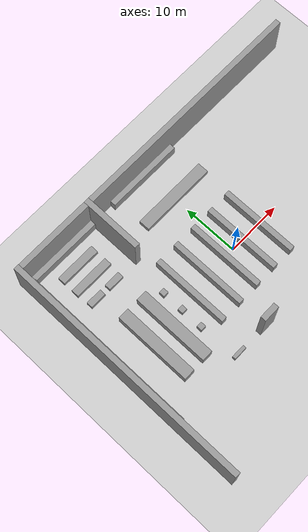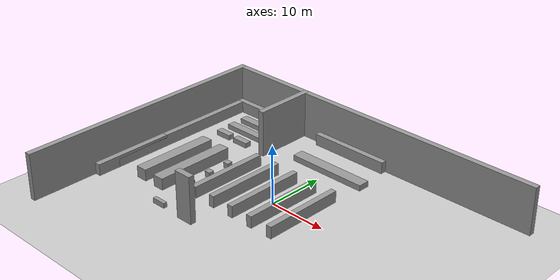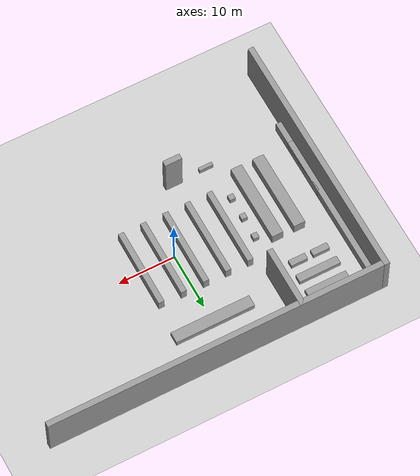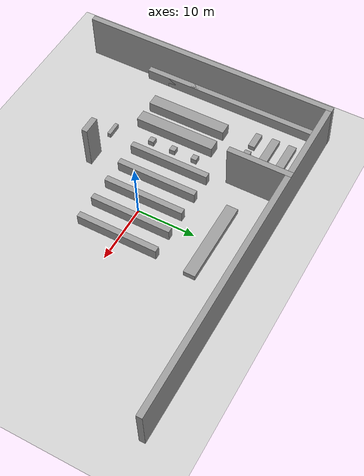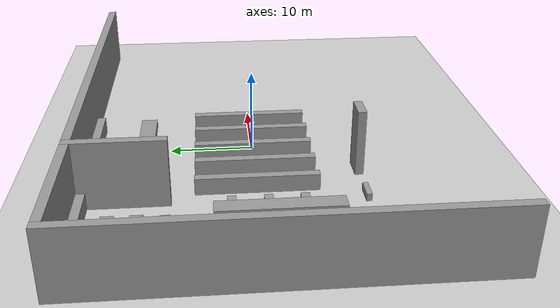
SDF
<sdf version="1.6">
 <world name="default">
  <model name="ground_plane">
   <static>1</static>
   <link name="link">
    <collision name="collision">
     <geometry><plane><normal>0 0 1</normal><size>100 100</size></plane></geometry>
     <surface>
      <contact><collide_bitmask>65535</collide_bitmask></contact>
      <friction><ode><mu>100</mu><mu2>50</mu2></ode></friction>
     </surface>
    </collision>
    <visual name="visual">
     <cast_shadows>0</cast_shadows>
     <geometry><plane><normal>0 0 1</normal><size>100 100</size></plane></geometry>
     <material>
      <script><uri>file://media/materials/scripts/gazebo.material</uri><name>Gazebo/Grey</name></script>
     </material>
    </visual>
   </link>
  </model>
  <model name="shelf">
   <link name="link">
    <inertial>
     <mass>1</mass>
     <inertia>
      <ixx>0.166667</ixx>
      <ixy>0</ixy>
      <ixz>0</ixz>
      <iyy>0.166667</iyy>
      <iyz>0</iyz>
      <izz>0.166667</izz>
     </inertia>
    </inertial>
    <visual name="visual">
     <geometry><box><size>1 14 2</size></box></geometry>
     <material>
      <script><name>Gazebo/Grey</name><uri>file://media/materials/scripts/gazebo.material</uri></script>
     </material>
    </visual>
    <collision name="collision">
     <geometry><box><size>1 14 2</size></box></geometry>
     <surface>
      <friction>
       <ode><mu>1</mu><mu2>1</mu2><fdir1>0 0 0</fdir1><slip1>0</slip1><slip2>0</slip2></ode>
       <torsional>
        <coefficient>1</coefficient>
        <patch_radius>0</patch_radius>
        <surface_radius>0</surface_radius>
        <use_patch_radius>1</use_patch_radius>
        <ode><slip>0</slip></ode>
       </torsional>
      </friction>
      <bounce><restitution_coefficient>0</restitution_coefficient><threshold>1e+06</threshold></bounce>
      <contact>
       <collide_without_contact>0</collide_without_contact>
       <collide_without_contact_bitmask>1</collide_without_contact_bitmask>
       <collide_bitmask>1</collide_bitmask>
       <ode>
        <soft_cfm>0</soft_cfm>
        <soft_erp>0.2</soft_erp>
        <kp>1e+13</kp>
        <kd>1</kd>
        <max_vel>0.01</max_vel>
        <min_depth>0</min_depth>
       </ode>
       <bullet>
        <split_impulse>1</split_impulse>
        <split_impulse_penetration_threshold>-0.01</split_impulse_penetration_threshold>
        <soft_cfm>0</soft_cfm>
        <soft_erp>0.2</soft_erp>
        <kp>1e+13</kp>
        <kd>1</kd>
       </bullet>
      </contact>
     </surface>
    </collision>
   </link>
   <static>1</static>
   <pose>-10 0 1 0 -0 0</pose>
  </model>
  <model name="shelf_0">
   <link name="link">
    <inertial>
     <mass>1</mass>
     <inertia>
      <ixx>0.166667</ixx>
      <ixy>0</ixy>
      <ixz>0</ixz>
      <iyy>0.166667</iyy>
      <iyz>0</iyz>
      <izz>0.166667</izz>
     </inertia>
    </inertial>
    <visual name="visual">
     <geometry><box><size>1 14 2</size></box></geometry>
     <material>
      <script><name>Gazebo/Grey</name><uri>file://media/materials/scripts/gazebo.material</uri></script>
     </material>
    </visual>
    <collision name="collision">
     <geometry><box><size>1 14 2</size></box></geometry>
     <surface>
      <friction>
       <ode><mu>1</mu><mu2>1</mu2><fdir1>0 0 0</fdir1><slip1>0</slip1><slip2>0</slip2></ode>
       <torsional>
        <coefficient>1</coefficient>
        <patch_radius>0</patch_radius>
        <surface_radius>0</surface_radius>
        <use_patch_radius>1</use_patch_radius>
        <ode><slip>0</slip></ode>
       </torsional>
      </friction>
      <bounce><restitution_coefficient>0</restitution_coefficient><threshold>1e+06</threshold></bounce>
      <contact>
       <collide_without_contact>0</collide_without_contact>
       <collide_without_contact_bitmask>1</collide_without_contact_bitmask>
       <collide_bitmask>1</collide_bitmask>
       <ode>
        <soft_cfm>0</soft_cfm>
        <soft_erp>0.2</soft_erp>
        <kp>1e+13</kp>
        <kd>1</kd>
        <max_vel>0.01</max_vel>
        <min_depth>0</min_depth>
       </ode>
       <bullet>
        <split_impulse>1</split_impulse>
        <split_impulse_penetration_threshold>-0.01</split_impulse_penetration_threshold>
        <soft_cfm>0</soft_cfm>
        <soft_erp>0.2</soft_erp>
        <kp>1e+13</kp>
        <kd>1</kd>
       </bullet>
      </contact>
     </surface>
    </collision>
   </link>
   <static>1</static>
   <pose>-6 0 1 0 -0 0</pose>
  </model>
  <model name="shelf_1">
   <link name="link">
    <inertial>
     <mass>1</mass>
     <inertia>
      <ixx>0.166667</ixx>
      <ixy>0</ixy>
      <ixz>0</ixz>
      <iyy>0.166667</iyy>
      <iyz>0</iyz>
      <izz>0.166667</izz>
     </inertia>
    </inertial>
    <visual name="visual">
     <geometry><box><size>1 14 2</size></box></geometry>
     <material>
      <script><name>Gazebo/Grey</name><uri>file://media/materials/scripts/gazebo.material</uri></script>
     </material>
    </visual>
    <collision name="collision">
     <geometry><box><size>1 14 2</size></box></geometry>
     <surface>
      <friction>
       <ode><mu>1</mu><mu2>1</mu2><fdir1>0 0 0</fdir1><slip1>0</slip1><slip2>0</slip2></ode>
       <torsional>
        <coefficient>1</coefficient>
        <patch_radius>0</patch_radius>
        <surface_radius>0</surface_radius>
        <use_patch_radius>1</use_patch_radius>
        <ode><slip>0</slip></ode>
       </torsional>
      </friction>
      <bounce><restitution_coefficient>0</restitution_coefficient><threshold>1e+06</threshold></bounce>
      <contact>
       <collide_without_contact>0</collide_without_contact>
       <collide_without_contact_bitmask>1</collide_without_contact_bitmask>
       <collide_bitmask>1</collide_bitmask>
       <ode>
        <soft_cfm>0</soft_cfm>
        <soft_erp>0.2</soft_erp>
        <kp>1e+13</kp>
        <kd>1</kd>
        <max_vel>0.01</max_vel>
        <min_depth>0</min_depth>
       </ode>
       <bullet>
        <split_impulse>1</split_impulse>
        <split_impulse_penetration_threshold>-0.01</split_impulse_penetration_threshold>
        <soft_cfm>0</soft_cfm>
        <soft_erp>0.2</soft_erp>
        <kp>1e+13</kp>
        <kd>1</kd>
       </bullet>
      </contact>
     </surface>
    </collision>
   </link>
   <static>1</static>
   <pose>-2 0 1 0 -0 0</pose>
  </model>
  <model name="shelf_2">
   <link name="link">
    <inertial>
     <mass>1</mass>
     <inertia>
      <ixx>0.166667</ixx>
      <ixy>0</ixy>
      <ixz>0</ixz>
      <iyy>0.166667</iyy>
      <iyz>0</iyz>
      <izz>0.166667</izz>
     </inertia>
    </inertial>
    <visual name="visual">
     <geometry><box><size>1 14 2</size></box></geometry>
     <material>
      <script><name>Gazebo/Grey</name><uri>file://media/materials/scripts/gazebo.material</uri></script>
     </material>
    </visual>
    <collision name="collision">
     <geometry><box><size>1 14 2</size></box></geometry>
     <surface>
      <friction>
       <ode><mu>1</mu><mu2>1</mu2><fdir1>0 0 0</fdir1><slip1>0</slip1><slip2>0</slip2></ode>
       <torsional>
        <coefficient>1</coefficient>
        <patch_radius>0</patch_radius>
        <surface_radius>0</surface_radius>
        <use_patch_radius>1</use_patch_radius>
        <ode><slip>0</slip></ode>
       </torsional>
      </friction>
      <bounce><restitution_coefficient>0</restitution_coefficient><threshold>1e+06</threshold></bounce>
      <contact>
       <collide_without_contact>0</collide_without_contact>
       <collide_without_contact_bitmask>1</collide_without_contact_bitmask>
       <collide_bitmask>1</collide_bitmask>
       <ode>
        <soft_cfm>0</soft_cfm>
        <soft_erp>0.2</soft_erp>
        <kp>1e+13</kp>
        <kd>1</kd>
        <max_vel>0.01</max_vel>
        <min_depth>0</min_depth>
       </ode>
       <bullet>
        <split_impulse>1</split_impulse>
        <split_impulse_penetration_threshold>-0.01</split_impulse_penetration_threshold>
        <soft_cfm>0</soft_cfm>
        <soft_erp>0.2</soft_erp>
        <kp>1e+13</kp>
        <kd>1</kd>
       </bullet>
      </contact>
     </surface>
    </collision>
   </link>
   <static>1</static>
   <pose>2 0 1 0 -0 0</pose>
  </model>
  <model name="shelf_3">
   <link name="link">
    <inertial>
     <mass>1</mass>
     <inertia>
      <ixx>0.166667</ixx>
      <ixy>0</ixy>
      <ixz>0</ixz>
      <iyy>0.166667</iyy>
      <iyz>0</iyz>
      <izz>0.166667</izz>
     </inertia>
    </inertial>
    <visual name="visual">
     <geometry><box><size>1 14 2</size></box></geometry>
     <material>
      <script><name>Gazebo/Grey</name><uri>file://media/materials/scripts/gazebo.material</uri></script>
     </material>
    </visual>
    <collision name="collision">
     <geometry><box><size>1 14 2</size></box></geometry>
     <surface>
      <friction>
       <ode><mu>1</mu><mu2>1</mu2><fdir1>0 0 0</fdir1><slip1>0</slip1><slip2>0</slip2></ode>
       <torsional>
        <coefficient>1</coefficient>
        <patch_radius>0</patch_radius>
        <surface_radius>0</surface_radius>
        <use_patch_radius>1</use_patch_radius>
        <ode><slip>0</slip></ode>
       </torsional>
      </friction>
      <bounce><restitution_coefficient>0</restitution_coefficient><threshold>1e+06</threshold></bounce>
      <contact>
       <collide_without_contact>0</collide_without_contact>
       <collide_without_contact_bitmask>1</collide_without_contact_bitmask>
       <collide_bitmask>1</collide_bitmask>
       <ode>
        <soft_cfm>0</soft_cfm>
        <soft_erp>0.2</soft_erp>
        <kp>1e+13</kp>
        <kd>1</kd>
        <max_vel>0.01</max_vel>
        <min_depth>0</min_depth>
       </ode>
       <bullet>
        <split_impulse>1</split_impulse>
        <split_impulse_penetration_threshold>-0.01</split_impulse_penetration_threshold>
        <soft_cfm>0</soft_cfm>
        <soft_erp>0.2</soft_erp>
        <kp>1e+13</kp>
        <kd>1</kd>
       </bullet>
      </contact>
     </surface>
    </collision>
   </link>
   <static>1</static>
   <pose>6 0 1 0 -0 0</pose>
  </model>
  <model name="shelf_clone_0_clone">
   <link name="link">
    <inertial>
     <mass>1</mass>
     <inertia>
      <ixx>0.166667</ixx>
      <ixy>0</ixy>
      <ixz>0</ixz>
      <iyy>0.166667</iyy>
      <iyz>0</iyz>
      <izz>0.166667</izz>
     </inertia>
    </inertial>
    <visual name="visual">
     <geometry><box><size>2 14 2</size></box></geometry>
     <material>
      <script><name>Gazebo/Grey</name><uri>file://media/materials/scripts/gazebo.material</uri></script>
     </material>
    </visual>
    <collision name="collision">
     <geometry><box><size>2 14 2</size></box></geometry>
     <surface>
      <friction>
       <ode><mu>1</mu><mu2>1</mu2><fdir1>0 0 0</fdir1><slip1>0</slip1><slip2>0</slip2></ode>
       <torsional>
        <coefficient>1</coefficient>
        <patch_radius>0</patch_radius>
        <surface_radius>0</surface_radius>
        <use_patch_radius>1</use_patch_radius>
        <ode><slip>0</slip></ode>
       </torsional>
      </friction>
      <bounce><restitution_coefficient>0</restitution_coefficient><threshold>1e+06</threshold></bounce>
      <contact>
       <collide_without_contact>0</collide_without_contact>
       <collide_without_contact_bitmask>1</collide_without_contact_bitmask>
       <collide_bitmask>1</collide_bitmask>
       <ode>
        <soft_cfm>0</soft_cfm>
        <soft_erp>0.2</soft_erp>
        <kp>1e+13</kp>
        <kd>1</kd>
        <max_vel>0.01</max_vel>
        <min_depth>0</min_depth>
       </ode>
       <bullet>
        <split_impulse>1</split_impulse>
        <split_impulse_penetration_threshold>-0.01</split_impulse_penetration_threshold>
        <soft_cfm>0</soft_cfm>
        <soft_erp>0.2</soft_erp>
        <kp>1e+13</kp>
        <kd>1</kd>
       </bullet>
      </contact>
     </surface>
    </collision>
   </link>
   <static>1</static>
   <pose>-20 -2 1 0 -0 0</pose>
  </model>
  <model name="shelf_clone_clone_clone_2_clone">
   <link name="link">
    <inertial>
     <mass>1</mass>
     <inertia>
      <ixx>0.166667</ixx>
      <ixy>0</ixy>
      <ixz>0</ixz>
      <iyy>0.166667</iyy>
      <iyz>0</iyz>
      <izz>0.166667</izz>
     </inertia>
    </inertial>
    <visual name="visual">
     <geometry><box><size>1.41321 7.39896 0.879745</size></box></geometry>
     <material>
      <script><name>Gazebo/Grey</name><uri>file://media/materials/scripts/gazebo.material</uri></script>
     </material>
    </visual>
    <collision name="collision">
     <geometry><box><size>1.41321 7.39896 0.879745</size></box></geometry>
     <surface>
      <friction>
       <ode><mu>1</mu><mu2>1</mu2><fdir1>0 0 0</fdir1><slip1>0</slip1><slip2>0</slip2></ode>
       <torsional>
        <coefficient>1</coefficient>
        <patch_radius>0</patch_radius>
        <surface_radius>0</surface_radius>
        <use_patch_radius>1</use_patch_radius>
        <ode><slip>0</slip></ode>
       </torsional>
      </friction>
      <bounce><restitution_coefficient>0</restitution_coefficient><threshold>1e+06</threshold></bounce>
      <contact>
       <collide_without_contact>0</collide_without_contact>
       <collide_without_contact_bitmask>1</collide_without_contact_bitmask>
       <collide_bitmask>1</collide_bitmask>
       <ode>
        <soft_cfm>0</soft_cfm>
        <soft_erp>0.2</soft_erp>
        <kp>1e+13</kp>
        <kd>1</kd>
        <max_vel>0.01</max_vel>
        <min_depth>0</min_depth>
       </ode>
       <bullet>
        <split_impulse>1</split_impulse>
        <split_impulse_penetration_threshold>-0.01</split_impulse_penetration_threshold>
        <soft_cfm>0</soft_cfm>
        <soft_erp>0.2</soft_erp>
        <kp>1e+13</kp>
        <kd>1</kd>
       </bullet>
      </contact>
     </surface>
    </collision>
   </link>
   <static>1</static>
   <pose>-19 16 0.440412 0 0 -1.5708</pose>
  </model>
  <model name="shelf_clone_clone_clone_2_clone_0_clone">
   <link name="link">
    <inertial>
     <mass>1</mass>
     <inertia>
      <ixx>0.166667</ixx>
      <ixy>0</ixy>
      <ixz>0</ixz>
      <iyy>0.166667</iyy>
      <iyz>0</iyz>
      <izz>0.166667</izz>
     </inertia>
    </inertial>
    <visual name="visual">
     <geometry><box><size>1.12602 2.96029 0.879745</size></box></geometry>
     <material>
      <script><name>Gazebo/Grey</name><uri>file://media/materials/scripts/gazebo.material</uri></script>
     </material>
    </visual>
    <collision name="collision">
     <geometry><box><size>1.12602 2.96029 0.879745</size></box></geometry>
     <surface>
      <friction>
       <ode><mu>1</mu><mu2>1</mu2><fdir1>0 0 0</fdir1><slip1>0</slip1><slip2>0</slip2></ode>
       <torsional>
        <coefficient>1</coefficient>
        <patch_radius>0</patch_radius>
        <surface_radius>0</surface_radius>
        <use_patch_radius>1</use_patch_radius>
        <ode><slip>0</slip></ode>
       </torsional>
      </friction>
      <bounce><restitution_coefficient>0</restitution_coefficient><threshold>1e+06</threshold></bounce>
      <contact>
       <collide_without_contact>0</collide_without_contact>
       <collide_without_contact_bitmask>1</collide_without_contact_bitmask>
       <collide_bitmask>1</collide_bitmask>
       <ode>
        <soft_cfm>0</soft_cfm>
        <soft_erp>0.2</soft_erp>
        <kp>1e+13</kp>
        <kd>1</kd>
        <max_vel>0.01</max_vel>
        <min_depth>0</min_depth>
       </ode>
       <bullet>
        <split_impulse>1</split_impulse>
        <split_impulse_penetration_threshold>-0.01</split_impulse_penetration_threshold>
        <soft_cfm>0</soft_cfm>
        <soft_erp>0.2</soft_erp>
        <kp>1e+13</kp>
        <kd>1</kd>
       </bullet>
      </contact>
     </surface>
    </collision>
   </link>
   <static>1</static>
   <pose>-17 10 0.440412 0 0 -1.5708</pose>
  </model>
  <model name="shelf_clone_clone_clone_clone_0_clone_clone_clone_clone">
   <link name="link">
    <inertial>
     <mass>1</mass>
     <inertia>
      <ixx>0.166667</ixx>
      <ixy>0</ixy>
      <ixz>0</ixz>
      <iyy>0.166667</iyy>
      <iyz>0</iyz>
      <izz>0.166667</izz>
     </inertia>
    </inertial>
    <visual name="visual">
     <geometry><box><size>0.6246 2.46632 0.879745</size></box></geometry>
     <material>
      <script><name>Gazebo/Grey</name><uri>file://media/materials/scripts/gazebo.material</uri></script>
     </material>
    </visual>
    <collision name="collision">
     <geometry><box><size>0.6246 2.46632 0.879745</size></box></geometry>
     <surface>
      <friction>
       <ode><mu>1</mu><mu2>1</mu2><fdir1>0 0 0</fdir1><slip1>0</slip1><slip2>0</slip2></ode>
       <torsional>
        <coefficient>1</coefficient>
        <patch_radius>0</patch_radius>
        <surface_radius>0</surface_radius>
        <use_patch_radius>1</use_patch_radius>
        <ode><slip>0</slip></ode>
       </torsional>
      </friction>
      <bounce><restitution_coefficient>0</restitution_coefficient><threshold>1e+06</threshold></bounce>
      <contact>
       <collide_without_contact>0</collide_without_contact>
       <collide_without_contact_bitmask>1</collide_without_contact_bitmask>
       <collide_bitmask>1</collide_bitmask>
       <ode>
        <soft_cfm>0</soft_cfm>
        <soft_erp>0.2</soft_erp>
        <kp>1e+13</kp>
        <kd>1</kd>
        <max_vel>0.01</max_vel>
        <min_depth>0</min_depth>
       </ode>
       <bullet>
        <split_impulse>1</split_impulse>
        <split_impulse_penetration_threshold>-0.01</split_impulse_penetration_threshold>
        <soft_cfm>0</soft_cfm>
        <soft_erp>0.2</soft_erp>
        <kp>1e+13</kp>
        <kd>1</kd>
       </bullet>
      </contact>
     </surface>
    </collision>
   </link>
   <static>1</static>
   <pose>-12 -12 0.440412 0 0 -1.5708</pose>
  </model>
  <model name="shelf_clone_clone_clone_2_clone_clone">
   <link name="link">
    <inertial>
     <mass>1</mass>
     <inertia>
      <ixx>0.166667</ixx>
      <ixy>0</ixy>
      <ixz>0</ixz>
      <iyy>0.166667</iyy>
      <iyz>0</iyz>
      <izz>0.166667</izz>
     </inertia>
    </inertial>
    <visual name="visual">
     <geometry><box><size>1.41321 7.39896 0.879745</size></box></geometry>
     <material>
      <script><name>Gazebo/Grey</name><uri>file://media/materials/scripts/gazebo.material</uri></script>
     </material>
    </visual>
    <collision name="collision">
     <geometry><box><size>1.41321 7.39896 0.879745</size></box></geometry>
     <surface>
      <friction>
       <ode><mu>1</mu><mu2>1</mu2><fdir1>0 0 0</fdir1><slip1>0</slip1><slip2>0</slip2></ode>
       <torsional>
        <coefficient>1</coefficient>
        <patch_radius>0</patch_radius>
        <surface_radius>0</surface_radius>
        <use_patch_radius>1</use_patch_radius>
        <ode><slip>0</slip></ode>
       </torsional>
      </friction>
      <bounce><restitution_coefficient>0</restitution_coefficient><threshold>1e+06</threshold></bounce>
      <contact>
       <collide_without_contact>0</collide_without_contact>
       <collide_without_contact_bitmask>1</collide_without_contact_bitmask>
       <collide_bitmask>1</collide_bitmask>
       <ode>
        <soft_cfm>0</soft_cfm>
        <soft_erp>0.2</soft_erp>
        <kp>1e+13</kp>
        <kd>1</kd>
        <max_vel>0.01</max_vel>
        <min_depth>0</min_depth>
       </ode>
       <bullet>
        <split_impulse>1</split_impulse>
        <split_impulse_penetration_threshold>-0.01</split_impulse_penetration_threshold>
        <soft_cfm>0</soft_cfm>
        <soft_erp>0.2</soft_erp>
        <kp>1e+13</kp>
        <kd>1</kd>
       </bullet>
      </contact>
     </surface>
    </collision>
   </link>
   <static>1</static>
   <pose>-19 13 0.440412 0 0 -1.5708</pose>
  </model>
  <model name="shelf_clone_clone_clone_2_clone_0_clone_clone">
   <link name="link">
    <inertial>
     <mass>1</mass>
     <inertia>
      <ixx>0.166667</ixx>
      <ixy>0</ixy>
      <ixz>0</ixz>
      <iyy>0.166667</iyy>
      <iyz>0</iyz>
      <izz>0.166667</izz>
     </inertia>
    </inertial>
    <visual name="visual">
     <geometry><box><size>1.12602 2.96029 0.879745</size></box></geometry>
     <material>
      <script><name>Gazebo/Grey</name><uri>file://media/materials/scripts/gazebo.material</uri></script>
     </material>
    </visual>
    <collision name="collision">
     <geometry><box><size>1.12602 2.96029 0.879745</size></box></geometry>
     <surface>
      <friction>
       <ode><mu>1</mu><mu2>1</mu2><fdir1>0 0 0</fdir1><slip1>0</slip1><slip2>0</slip2></ode>
       <torsional>
        <coefficient>1</coefficient>
        <patch_radius>0</patch_radius>
        <surface_radius>0</surface_radius>
        <use_patch_radius>1</use_patch_radius>
        <ode><slip>0</slip></ode>
       </torsional>
      </friction>
      <bounce><restitution_coefficient>0</restitution_coefficient><threshold>1e+06</threshold></bounce>
      <contact>
       <collide_without_contact>0</collide_without_contact>
       <collide_without_contact_bitmask>1</collide_without_contact_bitmask>
       <collide_bitmask>1</collide_bitmask>
       <ode>
        <soft_cfm>0</soft_cfm>
        <soft_erp>0.2</soft_erp>
        <kp>1e+13</kp>
        <kd>1</kd>
        <max_vel>0.01</max_vel>
        <min_depth>0</min_depth>
       </ode>
       <bullet>
        <split_impulse>1</split_impulse>
        <split_impulse_penetration_threshold>-0.01</split_impulse_penetration_threshold>
        <soft_cfm>0</soft_cfm>
        <soft_erp>0.2</soft_erp>
        <kp>1e+13</kp>
        <kd>1</kd>
       </bullet>
      </contact>
     </surface>
    </collision>
   </link>
   <static>1</static>
   <pose>-21 10 0.440412 0 0 -1.5708</pose>
  </model>
  <model name="shelf_clone_0_clone_clone">
   <link name="link">
    <inertial>
     <mass>1</mass>
     <inertia>
      <ixx>0.166667</ixx>
      <ixy>0</ixy>
      <ixz>0</ixz>
      <iyy>0.166667</iyy>
      <iyz>0</iyz>
      <izz>0.166667</izz>
     </inertia>
    </inertial>
    <visual name="visual">
     <geometry><box><size>2 14 2</size></box></geometry>
     <material>
      <script><name>Gazebo/Grey</name><uri>file://media/materials/scripts/gazebo.material</uri></script>
     </material>
    </visual>
    <collision name="collision">
     <geometry><box><size>2 14 2</size></box></geometry>
     <surface>
      <friction>
       <ode><mu>1</mu><mu2>1</mu2><fdir1>0 0 0</fdir1><slip1>0</slip1><slip2>0</slip2></ode>
       <torsional>
        <coefficient>1</coefficient>
        <patch_radius>0</patch_radius>
        <surface_radius>0</surface_radius>
        <use_patch_radius>1</use_patch_radius>
        <ode><slip>0</slip></ode>
       </torsional>
      </friction>
      <bounce><restitution_coefficient>0</restitution_coefficient><threshold>1e+06</threshold></bounce>
      <contact>
       <collide_without_contact>0</collide_without_contact>
       <collide_without_contact_bitmask>1</collide_without_contact_bitmask>
       <collide_bitmask>1</collide_bitmask>
       <ode>
        <soft_cfm>0</soft_cfm>
        <soft_erp>0.2</soft_erp>
        <kp>1e+13</kp>
        <kd>1</kd>
        <max_vel>0.01</max_vel>
        <min_depth>0</min_depth>
       </ode>
       <bullet>
        <split_impulse>1</split_impulse>
        <split_impulse_penetration_threshold>-0.01</split_impulse_penetration_threshold>
        <soft_cfm>0</soft_cfm>
        <soft_erp>0.2</soft_erp>
        <kp>1e+13</kp>
        <kd>1</kd>
       </bullet>
      </contact>
     </surface>
    </collision>
   </link>
   <static>1</static>
   <pose>-16 -2 1 0 -0 0</pose>
  </model>
  <model name="Cube_0">
   <link name="link_1">
    <inertial>
     <mass>1</mass>
     <inertia>
      <ixx>0.166667</ixx>
      <ixy>0</ixy>
      <ixz>0</ixz>
      <iyy>0.166667</iyy>
      <iyz>0</iyz>
      <izz>0.166667</izz>
     </inertia>
    </inertial>
    <visual name="visual">
     <geometry><box><size>1 1 1</size></box></geometry>
     <material>
      <lighting>1</lighting>
      <script><uri>file://media/materials/scripts/gazebo.material</uri><name>Gazebo/Grey</name></script>
     </material>
    </visual>
    <collision name="collision">
     <geometry><box><size>1 1 1</size></box></geometry>
     <surface>
      <friction>
       <ode><mu>1</mu><mu2>1</mu2><fdir1>0 0 0</fdir1><slip1>0</slip1><slip2>0</slip2></ode>
       <torsional>
        <coefficient>1</coefficient>
        <patch_radius>0</patch_radius>
        <surface_radius>0</surface_radius>
        <use_patch_radius>1</use_patch_radius>
        <ode><slip>0</slip></ode>
       </torsional>
      </friction>
      <bounce><restitution_coefficient>0</restitution_coefficient><threshold>1e+06</threshold></bounce>
      <contact>
       <collide_without_contact>0</collide_without_contact>
       <collide_without_contact_bitmask>1</collide_without_contact_bitmask>
       <collide_bitmask>1</collide_bitmask>
       <ode>
        <soft_cfm>0</soft_cfm>
        <soft_erp>0.2</soft_erp>
        <kp>1e+13</kp>
        <kd>1</kd>
        <max_vel>0.01</max_vel>
        <min_depth>0</min_depth>
       </ode>
       <bullet>
        <split_impulse>1</split_impulse>
        <split_impulse_penetration_threshold>-0.01</split_impulse_penetration_threshold>
        <soft_cfm>0</soft_cfm>
        <soft_erp>0.2</soft_erp>
        <kp>1e+13</kp>
        <kd>1</kd>
       </bullet>
      </contact>
     </surface>
    </collision>
   </link>
   <static>1</static>
   <pose>-13 -5 0.5 0 -0 0</pose>
  </model>
  <model name="Cube">
   <link name="link_1">
    <inertial>
     <mass>1</mass>
     <inertia>
      <ixx>0.166667</ixx>
      <ixy>0</ixy>
      <ixz>0</ixz>
      <iyy>0.166667</iyy>
      <iyz>0</iyz>
      <izz>0.166667</izz>
     </inertia>
    </inertial>
    <visual name="visual">
     <geometry><box><size>1 1 1</size></box></geometry>
     <material>
      <lighting>1</lighting>
      <script><uri>file://media/materials/scripts/gazebo.material</uri><name>Gazebo/Grey</name></script>
     </material>
    </visual>
    <collision name="collision">
     <geometry><box><size>1 1 1</size></box></geometry>
     <surface>
      <friction>
       <ode><mu>1</mu><mu2>1</mu2><fdir1>0 0 0</fdir1><slip1>0</slip1><slip2>0</slip2></ode>
       <torsional>
        <coefficient>1</coefficient>
        <patch_radius>0</patch_radius>
        <surface_radius>0</surface_radius>
        <use_patch_radius>1</use_patch_radius>
        <ode><slip>0</slip></ode>
       </torsional>
      </friction>
      <bounce><restitution_coefficient>0</restitution_coefficient><threshold>1e+06</threshold></bounce>
      <contact>
       <collide_without_contact>0</collide_without_contact>
       <collide_without_contact_bitmask>1</collide_without_contact_bitmask>
       <collide_bitmask>1</collide_bitmask>
       <ode>
        <soft_cfm>0</soft_cfm>
        <soft_erp>0.2</soft_erp>
        <kp>1e+13</kp>
        <kd>1</kd>
        <max_vel>0.01</max_vel>
        <min_depth>0</min_depth>
       </ode>
       <bullet>
        <split_impulse>1</split_impulse>
        <split_impulse_penetration_threshold>-0.01</split_impulse_penetration_threshold>
        <soft_cfm>0</soft_cfm>
        <soft_erp>0.2</soft_erp>
        <kp>1e+13</kp>
        <kd>1</kd>
       </bullet>
      </contact>
     </surface>
    </collision>
   </link>
   <static>1</static>
   <pose>-13 -1 0.493982 0 -0 0</pose>
  </model>
  <model name="Cube_1">
   <link name="link_1">
    <inertial>
     <mass>1</mass>
     <inertia>
      <ixx>0.166667</ixx>
      <ixy>0</ixy>
      <ixz>0</ixz>
      <iyy>0.166667</iyy>
      <iyz>0</iyz>
      <izz>0.166667</izz>
     </inertia>
    </inertial>
    <visual name="visual">
     <geometry><box><size>1 1 1</size></box></geometry>
     <material>
      <lighting>1</lighting>
      <script><uri>file://media/materials/scripts/gazebo.material</uri><name>Gazebo/Grey</name></script>
     </material>
    </visual>
    <collision name="collision">
     <geometry><box><size>1 1 1</size></box></geometry>
     <surface>
      <friction>
       <ode><mu>1</mu><mu2>1</mu2><fdir1>0 0 0</fdir1><slip1>0</slip1><slip2>0</slip2></ode>
       <torsional>
        <coefficient>1</coefficient>
        <patch_radius>0</patch_radius>
        <surface_radius>0</surface_radius>
        <use_patch_radius>1</use_patch_radius>
        <ode><slip>0</slip></ode>
       </torsional>
      </friction>
      <bounce><restitution_coefficient>0</restitution_coefficient><threshold>1e+06</threshold></bounce>
      <contact>
       <collide_without_contact>0</collide_without_contact>
       <collide_without_contact_bitmask>1</collide_without_contact_bitmask>
       <collide_bitmask>1</collide_bitmask>
       <ode>
        <soft_cfm>0</soft_cfm>
        <soft_erp>0.2</soft_erp>
        <kp>1e+13</kp>
        <kd>1</kd>
        <max_vel>0.01</max_vel>
        <min_depth>0</min_depth>
       </ode>
       <bullet>
        <split_impulse>1</split_impulse>
        <split_impulse_penetration_threshold>-0.01</split_impulse_penetration_threshold>
        <soft_cfm>0</soft_cfm>
        <soft_erp>0.2</soft_erp>
        <kp>1e+13</kp>
        <kd>1</kd>
       </bullet>
      </contact>
     </surface>
    </collision>
   </link>
   <static>1</static>
   <pose>-13 3 0.495173 0 -0 0</pose>
  </model>
  <model name="wall2">
   <link name="link_0">
    <inertial>
     <mass>92.0004</mass>
     <inertia><ixx>4178.36</ixx><ixy>0</ixy><ixz>0</ixz><iyy>130.334</iyy><iyz>0</iyz><izz>4063.36</izz></inertia>
    </inertial>
    <visual name="visual">
     <geometry><box><size>1 45.0188 8</size></box></geometry>
     <material>
      <lighting>1</lighting>
      <script><uri>file://media/materials/scripts/gazebo.material</uri><name>Gazebo/Grey</name></script>
     </material>
    </visual>
    <collision name="collision">
     <geometry><box><size>1 45.0188 8</size></box></geometry>
     <surface>
      <friction>
       <ode><mu>1</mu><mu2>1</mu2><fdir1>0 0 0</fdir1><slip1>0</slip1><slip2>0</slip2></ode>
       <torsional>
        <coefficient>1</coefficient>
        <patch_radius>0</patch_radius>
        <surface_radius>0</surface_radius>
        <use_patch_radius>1</use_patch_radius>
        <ode><slip>0</slip></ode>
       </torsional>
      </friction>
      <bounce><restitution_coefficient>0</restitution_coefficient><threshold>1e+06</threshold></bounce>
      <contact>
       <collide_without_contact>0</collide_without_contact>
       <collide_without_contact_bitmask>1</collide_without_contact_bitmask>
       <collide_bitmask>1</collide_bitmask>
       <ode>
        <soft_cfm>0</soft_cfm>
        <soft_erp>0.2</soft_erp>
        <kp>1e+13</kp>
        <kd>1</kd>
        <max_vel>0.01</max_vel>
        <min_depth>0</min_depth>
       </ode>
       <bullet>
        <split_impulse>1</split_impulse>
        <split_impulse_penetration_threshold>-0.01</split_impulse_penetration_threshold>
        <soft_cfm>0</soft_cfm>
        <soft_erp>0.2</soft_erp>
        <kp>1e+13</kp>
        <kd>1</kd>
       </bullet>
      </contact>
     </surface>
    </collision>
   </link>
   <static>1</static>
   <pose>-27 -2 4 0 -0 0</pose>
  </model>
  <model name="wall1_0">
   <link name="link_0">
    <inertial>
     <mass>108.001</mass>
     <inertia><ixx>153</ixx><ixy>0</ixy><ixz>0</ixz><iyy>6705.03</iyy><iyz>0</iyz><izz>6570.03</izz></inertia>
    </inertial>
    <visual name="visual">
     <geometry><box><size>59.0682 1 7.99998</size></box></geometry>
     <material>
      <lighting>1</lighting>
      <script><uri>file://media/materials/scripts/gazebo.material</uri><name>Gazebo/Grey</name></script>
     </material>
    </visual>
    <collision name="collision">
     <geometry><box><size>59.0682 1 7.99998</size></box></geometry>
     <surface>
      <friction>
       <ode><mu>1</mu><mu2>1</mu2><fdir1>0 0 0</fdir1><slip1>0</slip1><slip2>0</slip2></ode>
       <torsional>
        <coefficient>1</coefficient>
        <patch_radius>0</patch_radius>
        <surface_radius>0</surface_radius>
        <use_patch_radius>1</use_patch_radius>
        <ode><slip>0</slip></ode>
       </torsional>
      </friction>
      <bounce><restitution_coefficient>0</restitution_coefficient><threshold>1e+06</threshold></bounce>
      <contact>
       <collide_without_contact>0</collide_without_contact>
       <collide_without_contact_bitmask>1</collide_without_contact_bitmask>
       <collide_bitmask>1</collide_bitmask>
       <ode>
        <soft_cfm>0</soft_cfm>
        <soft_erp>0.2</soft_erp>
        <kp>1e+13</kp>
        <kd>1</kd>
        <max_vel>0.01</max_vel>
        <min_depth>0</min_depth>
       </ode>
       <bullet>
        <split_impulse>1</split_impulse>
        <split_impulse_penetration_threshold>-0.01</split_impulse_penetration_threshold>
        <soft_cfm>0</soft_cfm>
        <soft_erp>0.2</soft_erp>
        <kp>1e+13</kp>
        <kd>1</kd>
       </bullet>
      </contact>
     </surface>
    </collision>
   </link>
   <static>1</static>
   <pose>3 20 4 0 -0 0</pose>
  </model>
  <model name="wall2_0">
   <link name="link_0">
    <inertial>
     <mass>92.0004</mass>
     <inertia><ixx>4178.36</ixx><ixy>0</ixy><ixz>0</ixz><iyy>130.334</iyy><iyz>0</iyz><izz>4063.36</izz></inertia>
    </inertial>
    <visual name="visual">
     <geometry><box><size>1 10.9748 8</size></box></geometry>
     <material>
      <lighting>1</lighting>
      <script><uri>file://media/materials/scripts/gazebo.material</uri><name>Gazebo/Grey</name></script>
     </material>
    </visual>
    <collision name="collision">
     <geometry><box><size>1 10.9748 8</size></box></geometry>
     <surface>
      <friction>
       <ode><mu>1</mu><mu2>1</mu2><fdir1>0 0 0</fdir1><slip1>0</slip1><slip2>0</slip2></ode>
       <torsional>
        <coefficient>1</coefficient>
        <patch_radius>0</patch_radius>
        <surface_radius>0</surface_radius>
        <use_patch_radius>1</use_patch_radius>
        <ode><slip>0</slip></ode>
       </torsional>
      </friction>
      <bounce><restitution_coefficient>0</restitution_coefficient><threshold>1e+06</threshold></bounce>
      <contact>
       <collide_without_contact>0</collide_without_contact>
       <collide_without_contact_bitmask>1</collide_without_contact_bitmask>
       <collide_bitmask>1</collide_bitmask>
       <ode>
        <soft_cfm>0</soft_cfm>
        <soft_erp>0.2</soft_erp>
        <kp>1e+13</kp>
        <kd>1</kd>
        <max_vel>0.01</max_vel>
        <min_depth>0</min_depth>
       </ode>
       <bullet>
        <split_impulse>1</split_impulse>
        <split_impulse_penetration_threshold>-0.01</split_impulse_penetration_threshold>
        <soft_cfm>0</soft_cfm>
        <soft_erp>0.2</soft_erp>
        <kp>1e+13</kp>
        <kd>1</kd>
       </bullet>
      </contact>
     </surface>
    </collision>
   </link>
   <static>1</static>
   <pose>-12 15 4 0 -0 0</pose>
  </model>
  <model name="shelf_clone_0">
   <link name="link">
    <inertial>
     <mass>1</mass>
     <inertia>
      <ixx>0.166667</ixx>
      <ixy>0</ixy>
      <ixz>0</ixz>
      <iyy>0.166667</iyy>
      <iyz>0</iyz>
      <izz>0.166667</izz>
     </inertia>
    </inertial>
    <visual name="visual">
     <geometry><box><size>1 14 2</size></box></geometry>
     <material>
      <script><name>Gazebo/Grey</name><uri>file://media/materials/scripts/gazebo.material</uri></script>
     </material>
    </visual>
    <collision name="collision">
     <geometry><box><size>1 14 2</size></box></geometry>
     <surface>
      <friction>
       <ode><mu>1</mu><mu2>1</mu2><fdir1>0 0 0</fdir1><slip1>0</slip1><slip2>0</slip2></ode>
       <torsional>
        <coefficient>1</coefficient>
        <patch_radius>0</patch_radius>
        <surface_radius>0</surface_radius>
        <use_patch_radius>1</use_patch_radius>
        <ode><slip>0</slip></ode>
       </torsional>
      </friction>
      <bounce><restitution_coefficient>0</restitution_coefficient><threshold>1e+06</threshold></bounce>
      <contact>
       <collide_without_contact>0</collide_without_contact>
       <collide_without_contact_bitmask>1</collide_without_contact_bitmask>
       <collide_bitmask>1</collide_bitmask>
       <ode>
        <soft_cfm>0</soft_cfm>
        <soft_erp>0.2</soft_erp>
        <kp>1e+13</kp>
        <kd>1</kd>
        <max_vel>0.01</max_vel>
        <min_depth>0</min_depth>
       </ode>
       <bullet>
        <split_impulse>1</split_impulse>
        <split_impulse_penetration_threshold>-0.01</split_impulse_penetration_threshold>
        <soft_cfm>0</soft_cfm>
        <soft_erp>0.2</soft_erp>
        <kp>1e+13</kp>
        <kd>1</kd>
       </bullet>
      </contact>
     </surface>
    </collision>
   </link>
   <static>1</static>
   <pose>-1 19 1 0 0 -1.5708</pose>
  </model>
  <model name="shelf_clone_0_clone_0">
   <link name="link">
    <inertial>
     <mass>1</mass>
     <inertia>
      <ixx>0.166667</ixx>
      <ixy>0</ixy>
      <ixz>0</ixz>
      <iyy>0.166667</iyy>
      <iyz>0</iyz>
      <izz>0.166667</izz>
     </inertia>
    </inertial>
    <visual name="visual">
     <geometry><box><size>1 14 2</size></box></geometry>
     <material>
      <script><name>Gazebo/Grey</name><uri>file://media/materials/scripts/gazebo.material</uri></script>
     </material>
    </visual>
    <collision name="collision">
     <geometry><box><size>1 14 2</size></box></geometry>
     <surface>
      <friction>
       <ode><mu>1</mu><mu2>1</mu2><fdir1>0 0 0</fdir1><slip1>0</slip1><slip2>0</slip2></ode>
       <torsional>
        <coefficient>1</coefficient>
        <patch_radius>0</patch_radius>
        <surface_radius>0</surface_radius>
        <use_patch_radius>1</use_patch_radius>
        <ode><slip>0</slip></ode>
       </torsional>
      </friction>
      <bounce><restitution_coefficient>0</restitution_coefficient><threshold>1e+06</threshold></bounce>
      <contact>
       <collide_without_contact>0</collide_without_contact>
       <collide_without_contact_bitmask>1</collide_without_contact_bitmask>
       <collide_bitmask>1</collide_bitmask>
       <ode>
        <soft_cfm>0</soft_cfm>
        <soft_erp>0.2</soft_erp>
        <kp>1e+13</kp>
        <kd>1</kd>
        <max_vel>0.01</max_vel>
        <min_depth>0</min_depth>
       </ode>
       <bullet>
        <split_impulse>1</split_impulse>
        <split_impulse_penetration_threshold>-0.01</split_impulse_penetration_threshold>
        <soft_cfm>0</soft_cfm>
        <soft_erp>0.2</soft_erp>
        <kp>1e+13</kp>
        <kd>1</kd>
       </bullet>
      </contact>
     </surface>
    </collision>
   </link>
   <static>1</static>
   <pose>-19.504 19 1 0 0 -1.5708</pose>
  </model>
  <model name="tall_shelf_0_clone_clone_clone_clone_clone">
   <link name="link_0">
    <inertial>
     <mass>32</mass>
     <inertia><ixx>45.3334</ixx><ixy>0</ixy><ixz>0</ixz><iyy>213.334</iyy><iyz>0</iyz><izz>173.334</izz></inertia>
    </inertial>
    <visual name="visual">
     <geometry><box><size>2.9933 1 8</size></box></geometry>
     <material>
      <lighting>1</lighting>
      <script><uri>file://media/materials/scripts/gazebo.material</uri><name>Gazebo/Grey</name></script>
     </material>
    </visual>
    <collision name="collision">
     <geometry><box><size>2.9933 1 8</size></box></geometry>
     <surface>
      <friction>
       <ode><mu>1</mu><mu2>1</mu2><fdir1>0 0 0</fdir1><slip1>0</slip1><slip2>0</slip2></ode>
       <torsional>
        <coefficient>1</coefficient>
        <patch_radius>0</patch_radius>
        <surface_radius>0</surface_radius>
        <use_patch_radius>1</use_patch_radius>
        <ode><slip>0</slip></ode>
       </torsional>
      </friction>
      <bounce><restitution_coefficient>0</restitution_coefficient><threshold>1e+06</threshold></bounce>
      <contact>
       <collide_without_contact>0</collide_without_contact>
       <collide_without_contact_bitmask>1</collide_without_contact_bitmask>
       <collide_bitmask>1</collide_bitmask>
       <ode>
        <soft_cfm>0</soft_cfm>
        <soft_erp>0.2</soft_erp>
        <kp>1e+13</kp>
        <kd>1</kd>
        <max_vel>0.01</max_vel>
        <min_depth>0</min_depth>
       </ode>
       <bullet>
        <split_impulse>1</split_impulse>
        <split_impulse_penetration_threshold>-0.01</split_impulse_penetration_threshold>
        <soft_cfm>0</soft_cfm>
        <soft_erp>0.2</soft_erp>
        <kp>1e+13</kp>
        <kd>1</kd>
       </bullet>
      </contact>
     </surface>
    </collision>
   </link>
   <static>1</static>
   <pose>-6 -12 4 0 0 -6e-06</pose>
  </model>
  <model name="MeatShelf_0">
   <link name="link_1">
    <inertial>
     <mass>28.0007</mass>
     <inertia><ixx>11.667</ixx><ixy>0</ixy><ixz>0</ixz><iyy>459.68</iyy><iyz>0</iyz><izz>466.68</izz></inertia>
    </inertial>
    <visual name="visual">
     <geometry><box><size>14 2 1</size></box></geometry>
     <material>
      <lighting>1</lighting>
      <script><uri>file://media/materials/scripts/gazebo.material</uri><name>Gazebo/Grey</name></script>
     </material>
    </visual>
    <collision name="collision">
     <geometry><box><size>14 2 1</size></box></geometry>
     <surface>
      <friction>
       <ode><mu>1</mu><mu2>1</mu2><fdir1>0 0 0</fdir1><slip1>0</slip1><slip2>0</slip2></ode>
       <torsional>
        <coefficient>1</coefficient>
        <patch_radius>0</patch_radius>
        <surface_radius>0</surface_radius>
        <use_patch_radius>1</use_patch_radius>
        <ode><slip>0</slip></ode>
       </torsional>
      </friction>
      <bounce><restitution_coefficient>0</restitution_coefficient><threshold>1e+06</threshold></bounce>
      <contact>
       <collide_without_contact>0</collide_without_contact>
       <collide_without_contact_bitmask>1</collide_without_contact_bitmask>
       <collide_bitmask>1</collide_bitmask>
       <ode>
        <soft_cfm>0</soft_cfm>
        <soft_erp>0.2</soft_erp>
        <kp>1e+13</kp>
        <kd>1</kd>
        <max_vel>0.01</max_vel>
        <min_depth>0</min_depth>
       </ode>
       <bullet>
        <split_impulse>1</split_impulse>
        <split_impulse_penetration_threshold>-0.01</split_impulse_penetration_threshold>
        <soft_cfm>0</soft_cfm>
        <soft_erp>0.2</soft_erp>
        <kp>1e+13</kp>
        <kd>1</kd>
       </bullet>
      </contact>
     </surface>
    </collision>
   </link>
   <static>1</static>
   <pose>0 13 0.5 0 -0 0</pose>
  </model>
  <model name="shelf_7_clone_1">
   <link name="link">
    <inertial>
     <mass>1</mass>
     <inertia>
      <ixx>0.166667</ixx>
      <ixy>0</ixy>
      <ixz>0</ixz>
      <iyy>0.166667</iyy>
      <iyz>0</iyz>
      <izz>0.166667</izz>
     </inertia>
    </inertial>
    <visual name="visual">
     <geometry><box><size>1 28 2</size></box></geometry>
     <material>
      <script><name>Gazebo/Grey</name><uri>file://media/materials/scripts/gazebo.material</uri></script>
     </material>
    </visual>
    <collision name="collision">
     <geometry><box><size>1 28 2</size></box></geometry>
     <surface>
      <friction>
       <ode><mu>1</mu><mu2>1</mu2><fdir1>0 0 0</fdir1><slip1>0</slip1><slip2>0</slip2></ode>
       <torsional>
        <coefficient>1</coefficient>
        <patch_radius>0</patch_radius>
        <surface_radius>0</surface_radius>
        <use_patch_radius>1</use_patch_radius>
        <ode><slip>0</slip></ode>
       </torsional>
      </friction>
      <bounce><restitution_coefficient>0</restitution_coefficient><threshold>1e+06</threshold></bounce>
      <contact>
       <collide_without_contact>0</collide_without_contact>
       <collide_without_contact_bitmask>1</collide_without_contact_bitmask>
       <collide_bitmask>1</collide_bitmask>
       <ode>
        <soft_cfm>0</soft_cfm>
        <soft_erp>0.2</soft_erp>
        <kp>1e+13</kp>
        <kd>1</kd>
        <max_vel>0.01</max_vel>
        <min_depth>0</min_depth>
       </ode>
       <bullet>
        <split_impulse>1</split_impulse>
        <split_impulse_penetration_threshold>-0.01</split_impulse_penetration_threshold>
        <soft_cfm>0</soft_cfm>
        <soft_erp>0.2</soft_erp>
        <kp>1e+13</kp>
        <kd>1</kd>
       </bullet>
      </contact>
     </surface>
    </collision>
   </link>
   <static>1</static>
   <pose>-26 5 1 0 -0 0</pose>
  </model>
  <model name="shelf_7_clone_2">
   <link name="link">
    <inertial>
     <mass>1</mass>
     <inertia>
      <ixx>0.166667</ixx>
      <ixy>0</ixy>
      <ixz>0</ixz>
      <iyy>0.166667</iyy>
      <iyz>0</iyz>
      <izz>0.166667</izz>
     </inertia>
    </inertial>
    <visual name="visual">
     <geometry><box><size>1 14 2</size></box></geometry>
     <material>
      <script><name>Gazebo/Grey</name><uri>file://media/materials/scripts/gazebo.material</uri></script>
     </material>
    </visual>
    <collision name="collision">
     <geometry><box><size>1 14 2</size></box></geometry>
     <surface>
      <friction>
       <ode><mu>1</mu><mu2>1</mu2><fdir1>0 0 0</fdir1><slip1>0</slip1><slip2>0</slip2></ode>
       <torsional>
        <coefficient>1</coefficient>
        <patch_radius>0</patch_radius>
        <surface_radius>0</surface_radius>
        <use_patch_radius>1</use_patch_radius>
        <ode><slip>0</slip></ode>
       </torsional>
      </friction>
      <bounce><restitution_coefficient>0</restitution_coefficient><threshold>1e+06</threshold></bounce>
      <contact>
       <collide_without_contact>0</collide_without_contact>
       <collide_without_contact_bitmask>1</collide_without_contact_bitmask>
       <collide_bitmask>1</collide_bitmask>
       <ode>
        <soft_cfm>0</soft_cfm>
        <soft_erp>0.2</soft_erp>
        <kp>1e+13</kp>
        <kd>1</kd>
        <max_vel>0.01</max_vel>
        <min_depth>0</min_depth>
       </ode>
       <bullet>
        <split_impulse>1</split_impulse>
        <split_impulse_penetration_threshold>-0.01</split_impulse_penetration_threshold>
        <soft_cfm>0</soft_cfm>
        <soft_erp>0.2</soft_erp>
        <kp>1e+13</kp>
        <kd>1</kd>
       </bullet>
      </contact>
     </surface>
    </collision>
   </link>
   <static>1</static>
   <pose>-26 -6 1 0 -0 0</pose>
  </model>
 </world>
</sdf>
